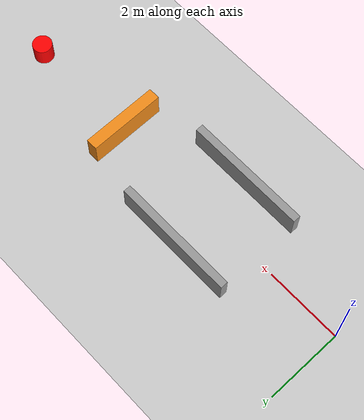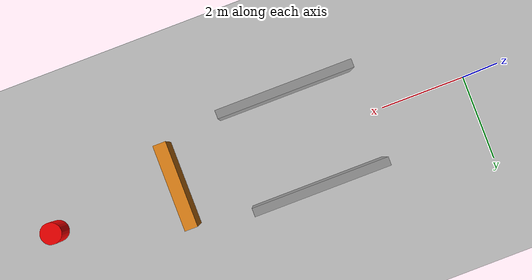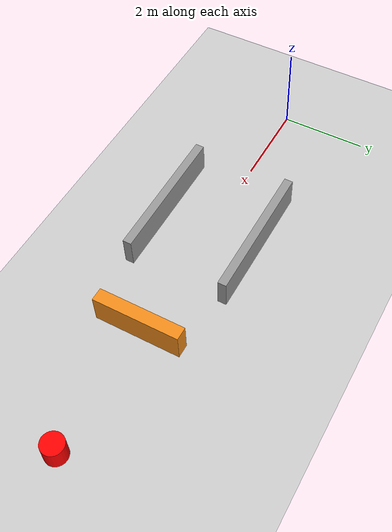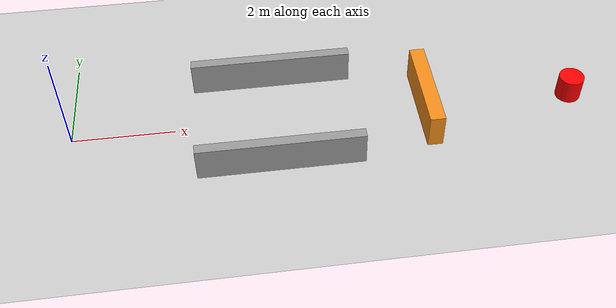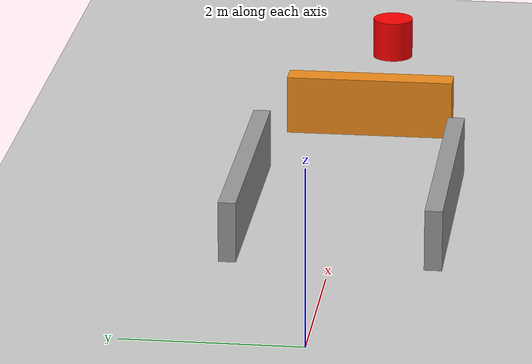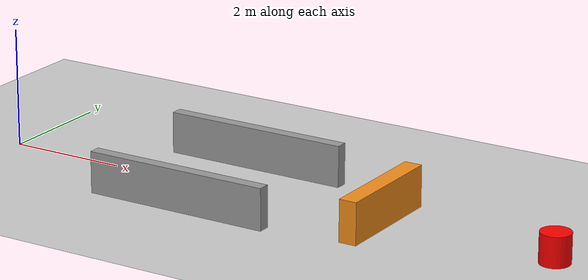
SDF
<?xml version="1.0" ?>
<sdf version="1.5">
  <!-- Phase-B-only copy of disaster_scene_a.world.  The sole infrastructure
       addition is the RotorS Gazebo<->ROS world bridge below. -->
  <world name="disaster_scene_a_rotors_smoke">
    <include>
      <uri>model://sun</uri>
    </include>
    <include>
      <uri>model://ground_plane</uri>
    </include>

    <plugin name="rotors_ros_interface_plugin"
            filename="librotors_gazebo_ros_interface_plugin.so" />

    <physics type="ode">
      <max_step_size>0.001</max_step_size>
      <real_time_update_rate>1000</real_time_update_rate>
    </physics>

    <model name="simple_wall_left">
      <static>true</static>
      <pose>4 1.15 0.35 0 0 0</pose>
      <link name="link">
        <collision name="collision">
          <geometry><box><size>3.2 0.20 0.70</size></box></geometry>
        </collision>
        <visual name="visual">
          <geometry><box><size>3.2 0.20 0.70</size></box></geometry>
          <material><script><uri>file://media/materials/scripts/gazebo.material</uri><name>Gazebo/Gray</name></script></material>
        </visual>
      </link>
    </model>

    <model name="simple_wall_right">
      <static>true</static>
      <pose>4 -1.15 0.35 0 0 0</pose>
      <link name="link">
        <collision name="collision">
          <geometry><box><size>3.2 0.20 0.70</size></box></geometry>
        </collision>
        <visual name="visual">
          <geometry><box><size>3.2 0.20 0.70</size></box></geometry>
          <material><script><uri>file://media/materials/scripts/gazebo.material</uri><name>Gazebo/Gray</name></script></material>
        </visual>
      </link>
    </model>

    <model name="low_barrier">
      <static>true</static>
      <pose>7 0 0.35 0 0 0</pose>
      <link name="link">
        <collision name="collision">
          <geometry><box><size>0.30 2.0 0.70</size></box></geometry>
        </collision>
        <visual name="visual">
          <geometry><box><size>0.30 2.0 0.70</size></box></geometry>
          <material><script><uri>file://media/materials/scripts/gazebo.material</uri><name>Gazebo/Orange</name></script></material>
        </visual>
      </link>
    </model>

    <model name="victim_marker">
      <static>true</static>
      <pose>10 0 0.25 0 0 0</pose>
      <link name="link">
        <visual name="visual">
          <geometry><cylinder><radius>0.25</radius><length>0.5</length></cylinder></geometry>
          <material><ambient>1 0 0 1</ambient><diffuse>1 0 0 1</diffuse></material>
        </visual>
      </link>
    </model>
  </world>
</sdf>
